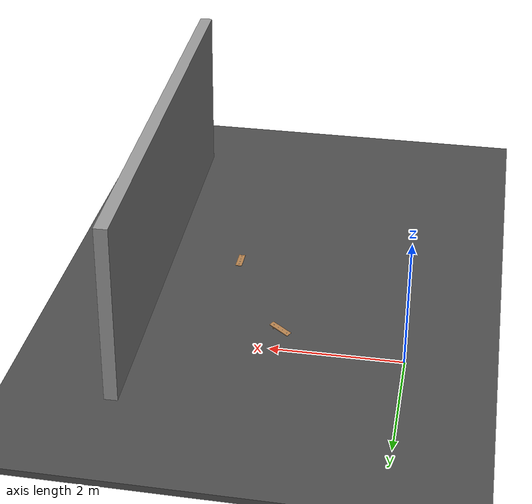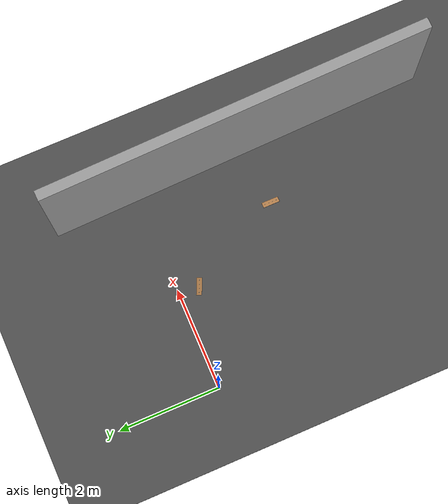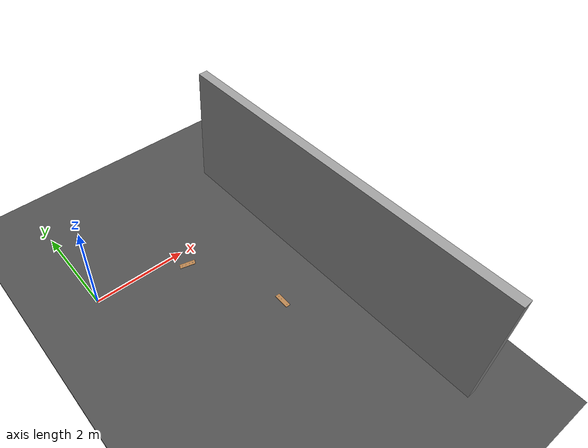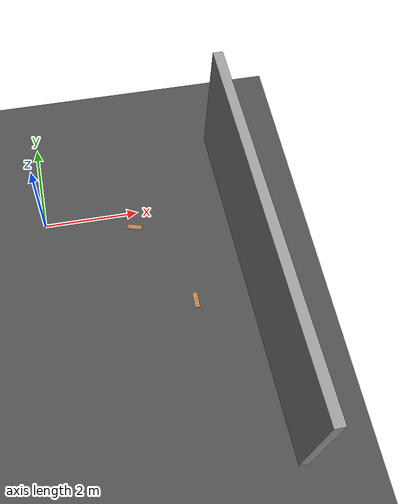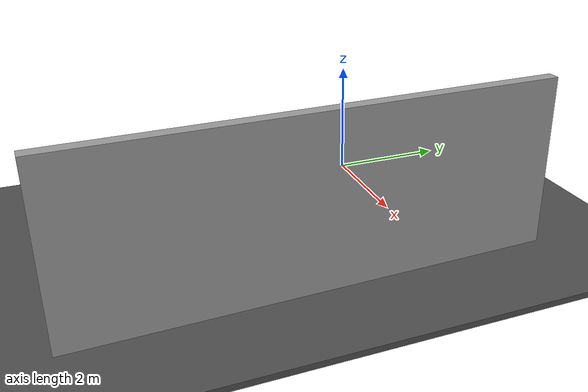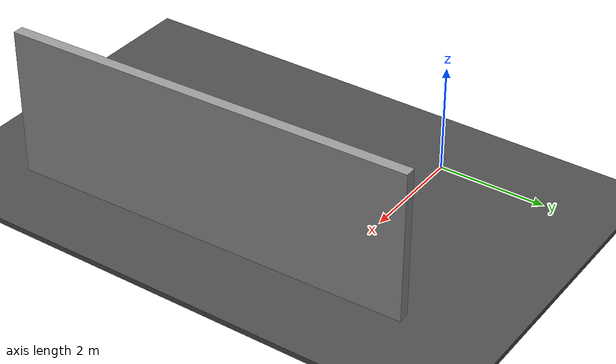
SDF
<sdf version="1.7">
 <world name="default">
  <model name="ground_plane">
   <static>1</static>
   <link name="link">
    <collision name="collision">
     <geometry><plane><normal>0 0 1</normal><size>100 100</size></plane></geometry>
     <surface><friction><ode><mu>100</mu><mu2>50</mu2></ode></friction></surface>
    </collision>
    <visual name="visual">
     <cast_shadows>0</cast_shadows>
     <geometry><plane><normal>0 0 1</normal><size>100 100</size></plane></geometry>
     <material>
      <script><uri>file://media/materials/scripts/gazebo.material</uri><name>Gazebo/Grey</name></script>
     </material>
    </visual>
   </link>
  </model>
  <model name="grey_wall_0">
   <static>1</static>
   <link name="link">
    <pose>0 0 1.4 0 -0 0</pose>
    <collision name="collision"><geometry><box><size>7.5 0.2 2.8</size></box></geometry></collision>
    <visual name="visual">
     <cast_shadows>0</cast_shadows>
     <geometry><box><size>7.5 0.2 2.8</size></box></geometry>
     <material>
      <script>
       <uri>model://grey_wall/materials/scripts</uri>
       <uri>model://grey_wall/materials/textures</uri>
       <name>vrc/grey_wall</name>
      </script>
     </material>
    </visual>
   </link>
   <pose>4.04359 -2.07191 0 0 0 -1.5457</pose>
  </model>
  <model name="wooden_board">
   <link name="base">
    <pose>0 0 0.00523 0 -0 0</pose>
    <inertial>
     <mass>0.2765</mass>
     <inertia>
      <ixx>0.0025148</ixx>
      <ixy>0</ixy>
      <ixz>0</ixz>
      <iyy>0.00024037</iyy>
      <iyz>0</iyz>
      <izz>0.00275013</izz>
     </inertia>
    </inertial>
    <collision name="collision">
     <geometry><box><size>0.1016 0.3302 0.01046</size></box></geometry>
     <surface>
      <contact>
       <poissons_ratio>0.347</poissons_ratio>
       <elastic_modulus>8.8e+09</elastic_modulus>
       <ode><kp>100000</kp><kd>100</kd><max_vel>100</max_vel><min_depth>0.001</min_depth></ode>
      </contact>
      <friction>
       <torsional>
        <coefficient>1</coefficient>
        <use_patch_radius>0</use_patch_radius>
        <surface_radius>0.01</surface_radius>
       </torsional>
      </friction>
     </surface>
    </collision>
    <visual name="visual">
     <geometry><box><size>0.1016 0.3302 0.01046</size></box></geometry>
     <material>
      <script><uri>file://media/materials/scripts/gazebo.material</uri><name>Gazebo/Wood</name></script>
     </material>
    </visual>
    <visual name="tee_nut_1">
     <pose>0 -0.116 0 0 -0 0</pose>
     <geometry><cylinder><radius>0.00635</radius><length>0.0105646</length></cylinder></geometry>
     <material>
      <script><uri>file://media/materials/scripts/gazebo.material</uri><name>Gazebo/Grey</name></script>
     </material>
    </visual>
    <visual name="tee_nut_2">
     <pose>0 -0.038 0 0 -0 0</pose>
     <geometry><cylinder><radius>0.00635</radius><length>0.0105646</length></cylinder></geometry>
     <material>
      <script><uri>file://media/materials/scripts/gazebo.material</uri><name>Gazebo/Grey</name></script>
     </material>
    </visual>
    <visual name="tee_nut_3">
     <pose>0 0.038 0 0 -0 0</pose>
     <geometry><cylinder><radius>0.00635</radius><length>0.0105646</length></cylinder></geometry>
     <material>
      <script><uri>file://media/materials/scripts/gazebo.material</uri><name>Gazebo/Grey</name></script>
     </material>
    </visual>
    <visual name="tee_nut_4">
     <pose>0 0.116 0 0 -0 0</pose>
     <geometry><cylinder><radius>0.00635</radius><length>0.0105646</length></cylinder></geometry>
     <material>
      <script><uri>file://media/materials/scripts/gazebo.material</uri><name>Gazebo/Grey</name></script>
     </material>
    </visual>
   </link>
   <pose>2.86135 -2.28709 0.048993 0 -0 0</pose>
  </model>
  <model name="asphalt_plane">
   <static>1</static>
   <link name="link">
    <collision name="collision"><geometry><box><size>20 20 0.1</size></box></geometry></collision>
    <visual name="visual">
     <cast_shadows>0</cast_shadows>
     <geometry><box><size>20 20 0.1</size></box></geometry>
     <material>
      <script>
       <uri>model://asphalt_plane/materials/scripts</uri>
       <uri>model://asphalt_plane/materials/textures</uri>
       <name>vrc/asphalt</name>
      </script>
     </material>
    </visual>
   </link>
   <pose>0.001928 -0.179786 0 0 -0 0</pose>
  </model>
  <model name="wooden_peg_board_clone_0">
   <frame name="wooden_board::__model__" attached_to="wooden_board::base">
    <pose relative_to="__model__">0 0 0 0 -0 0</pose>
   </frame>
   <link name="wooden_board::base">
    <pose relative_to="wooden_board::__model__">0 0 0.00523 0 -0 0</pose>
    <inertial>
     <mass>0.2765</mass>
     <inertia>
      <ixx>0.0025148</ixx>
      <ixy>0</ixy>
      <ixz>0</ixz>
      <iyy>0.00024037</iyy>
      <iyz>0</iyz>
      <izz>0.00275013</izz>
     </inertia>
    </inertial>
    <collision name="collision">
     <geometry><box><size>0.1016 0.3302 0.01046</size></box></geometry>
     <surface>
      <contact>
       <poissons_ratio>0.347</poissons_ratio>
       <elastic_modulus>8.8e+09</elastic_modulus>
       <ode><kp>100000</kp><kd>100</kd><max_vel>100</max_vel><min_depth>0.001</min_depth></ode>
      </contact>
      <friction>
       <torsional>
        <coefficient>1</coefficient>
        <use_patch_radius>0</use_patch_radius>
        <surface_radius>0.01</surface_radius>
       </torsional>
      </friction>
     </surface>
    </collision>
    <visual name="visual">
     <geometry><box><size>0.1016 0.3302 0.01046</size></box></geometry>
     <material>
      <script><uri>file://media/materials/scripts/gazebo.material</uri><name>Gazebo/Wood</name></script>
     </material>
    </visual>
    <visual name="tee_nut_1">
     <pose>0 -0.116 0 0 -0 0</pose>
     <geometry><cylinder><radius>0.00635</radius><length>0.0105646</length></cylinder></geometry>
     <material>
      <script><uri>file://media/materials/scripts/gazebo.material</uri><name>Gazebo/Grey</name></script>
     </material>
    </visual>
    <visual name="tee_nut_2">
     <pose>0 -0.038 0 0 -0 0</pose>
     <geometry><cylinder><radius>0.00635</radius><length>0.0105646</length></cylinder></geometry>
     <material>
      <script><uri>file://media/materials/scripts/gazebo.material</uri><name>Gazebo/Grey</name></script>
     </material>
    </visual>
    <visual name="tee_nut_3">
     <pose>0 0.038 0 0 -0 0</pose>
     <geometry><cylinder><radius>0.00635</radius><length>0.0105646</length></cylinder></geometry>
     <material>
      <script><uri>file://media/materials/scripts/gazebo.material</uri><name>Gazebo/Grey</name></script>
     </material>
    </visual>
    <visual name="tee_nut_4">
     <pose>0 0.116 0 0 -0 0</pose>
     <geometry><cylinder><radius>0.00635</radius><length>0.0105646</length></cylinder></geometry>
     <material>
      <script><uri>file://media/materials/scripts/gazebo.material</uri><name>Gazebo/Grey</name></script>
     </material>
    </visual>
   </link>
   <frame name="peg::__model__" attached_to="peg::link">
    <pose relative_to="__model__">0 0.116 0 0 -0 0</pose>
   </frame>
   <link name="peg::link">
    <pose relative_to="peg::__model__">0 0 0.04 0 -0 0</pose>
    <inertial>
     <mass>0.0175</mass>
     <inertia>
      <ixx>9.74923e-06</ixx>
      <ixy>0</ixy>
      <ixz>0</ixz>
      <iyy>9.74923e-06</iyy>
      <iyz>0</iyz>
      <izz>8.31797e-07</izz>
     </inertia>
    </inertial>
    <collision name="collision">
     <geometry><cylinder><radius>0.00975</radius><length>0.08</length></cylinder></geometry>
     <surface>
      <contact>
       <poissons_ratio>0.347</poissons_ratio>
       <elastic_modulus>8.8e+09</elastic_modulus>
       <ode><kp>100000</kp><kd>100</kd><max_vel>100</max_vel><min_depth>0.001</min_depth></ode>
      </contact>
      <friction>
       <torsional>
        <coefficient>1</coefficient>
        <use_patch_radius>0</use_patch_radius>
        <surface_radius>0.01</surface_radius>
       </torsional>
      </friction>
     </surface>
    </collision>
    <visual name="visual">
     <geometry><cylinder><radius>0.00975</radius><length>0.08</length></cylinder></geometry>
     <material>
      <script><uri>file://media/materials/scripts/gazebo.material</uri><name>Gazebo/Wood</name></script>
     </material>
    </visual>
   </link>
   <joint name="board_peg" type="revolute">
    <parent>wooden_board::base</parent>
    <child>peg::link</child>
    <axis>
     <xyz>0 0 1</xyz>
     <limit><upper>0</upper><lower>0</lower></limit>
     <dynamics><spring_reference>0</spring_reference><spring_stiffness>0</spring_stiffness></dynamics>
    </axis>
   </joint>
   <pose>1.89491 -0.401198 0.100115 2.89071 3e-06 1.13847</pose>
  </model>
 </world>
</sdf>
